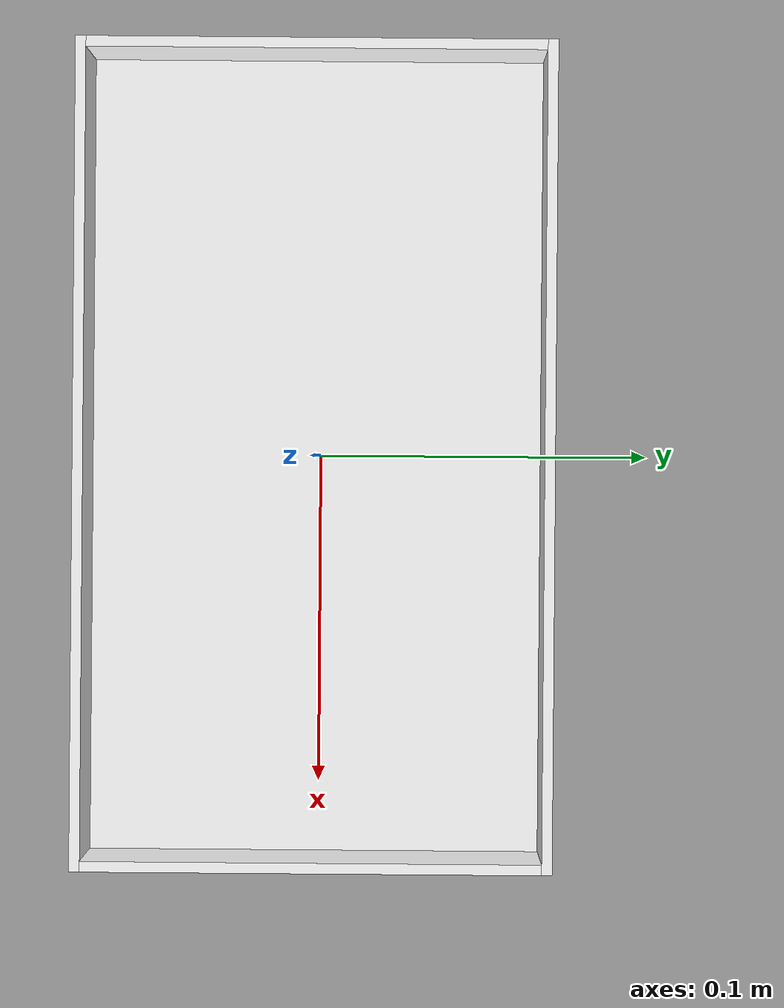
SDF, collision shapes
<?xml version="1.0"?>
<sdf version="1.6">
  <model name="survivor_tray">
    <static>false</static>

    <link name="tray_link">
      <inertial>
        <mass>0.25</mass>
        <inertia>
          <ixx>0.0006</ixx>
          <ixy>0</ixy>
          <ixz>0</ixz>
          <iyy>0.0011</iyy>
          <iyz>0</iyz>
          <izz>0.0014</izz>
        </inertia>
      </inertial>

      <visual name="tray_visual">
        <geometry>
          <mesh>
            <uri>model://survivor_tray/meshes/survivor_tray.stl</uri>
            <scale>0.001 0.001 0.001</scale>
          </mesh>
        </geometry>
        <material>
          <ambient>1.0 1.0 1.0 1.0</ambient>
          <diffuse>1.0 1.0 1.0 1.0</diffuse>
        </material>
      </visual>

      <!-- Collision is simplified into tray floor + four walls + four legs.
           This is more stable than using the detailed STL mesh as collision. -->
      <collision name="tray_floor_collision">
        <pose>0 0 0.0415 0 0 0</pose>
        <geometry>
          <box>
            <size>0.2370 0.1370 0.0030</size>
          </box>
        </geometry>
      </collision>

      <collision name="front_wall_collision">
        <pose>0 0.0670 0.0550 0 0 0</pose>
        <geometry>
          <box>
            <size>0.2370 0.0030 0.0300</size>
          </box>
        </geometry>
      </collision>

      <collision name="back_wall_collision">
        <pose>0 -0.0670 0.0550 0 0 0</pose>
        <geometry>
          <box>
            <size>0.2370 0.0030 0.0300</size>
          </box>
        </geometry>
      </collision>

      <collision name="left_wall_collision">
        <pose>-0.1170 0 0.0550 0 0 0</pose>
        <geometry>
          <box>
            <size>0.0030 0.1370 0.0300</size>
          </box>
        </geometry>
      </collision>

      <collision name="right_wall_collision">
        <pose>0.1170 0 0.0550 0 0 0</pose>
        <geometry>
          <box>
            <size>0.0030 0.1370 0.0300</size>
          </box>
        </geometry>
      </collision>

      <collision name="leg_fl_collision">
        <pose>0.1035 0.0535 0.0200 0 0 0</pose>
        <geometry><box><size>0.0100 0.0100 0.0400</size></box></geometry>
      </collision>
      <collision name="leg_fr_collision">
        <pose>0.1035 -0.0535 0.0200 0 0 0</pose>
        <geometry><box><size>0.0100 0.0100 0.0400</size></box></geometry>
      </collision>
      <collision name="leg_bl_collision">
        <pose>-0.1035 0.0535 0.0200 0 0 0</pose>
        <geometry><box><size>0.0100 0.0100 0.0400</size></box></geometry>
      </collision>
      <collision name="leg_br_collision">
        <pose>-0.1035 -0.0535 0.0200 0 0 0</pose>
        <geometry><box><size>0.0100 0.0100 0.0400</size></box></geometry>
      </collision>
    </link>
  </model>
</sdf>
